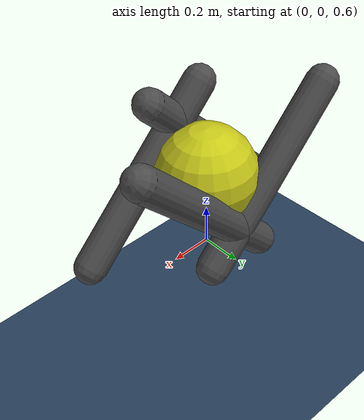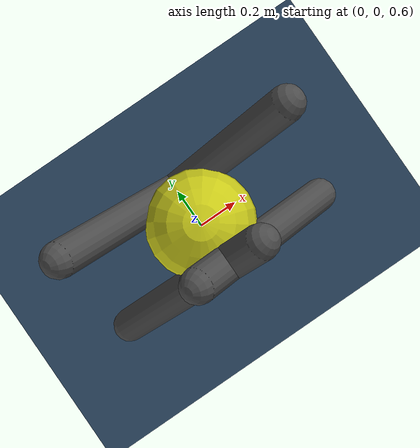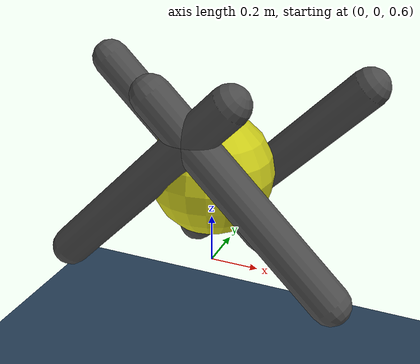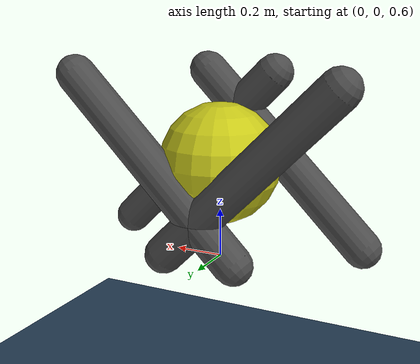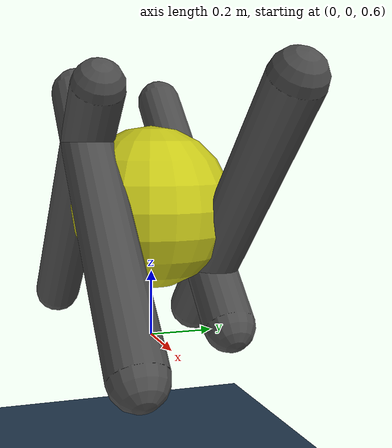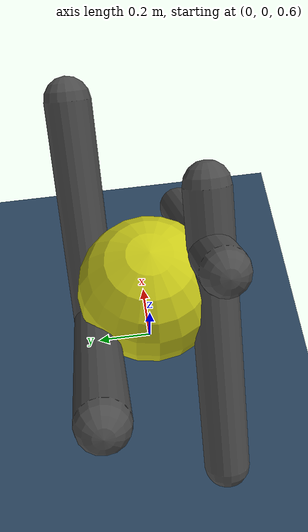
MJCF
<mujoco model="ant_simple">
  <option timestep="0.005" gravity="0 0 -9.81"/>

  <visual>
    <headlight ambient="0.4 0.4 0.4" diffuse="0.6 0.6 0.6" specular="0.1 0.1 0.1"/>
    <rgba haze="0.15 0.25 0.35 1"/>
    <global offwidth="1024" offheight="1024"/>
  </visual>

  <worldbody>
    <light pos="0 0 5" dir="0 0 -1" directional="true"/>
    <geom name="floor" type="plane" size="0 0 0.05" material="grid"/>

    <body name="torso" pos="0 0 1">
      <freejoint/>
      <geom name="torso_geom" type="sphere" size="0.25" rgba="0.8 0.8 0.1 1" mass="10"/>
      <body name="leg1" pos="0.2 0.2 0">
         <geom name="leg1_geom" type="capsule" size="0.08 0.5" rgba="0.3 0.3 0.3 1" mass="2" euler="0 45 0"/>
      </body>
      <body name="leg2" pos="-0.2 0.2 0">
         <geom name="leg2_geom" type="capsule" size="0.08 0.5" rgba="0.3 0.3 0.3 1" mass="2" euler="0 -45 0"/>
      </body>
      <body name="leg3" pos="-0.2 -0.2 0">
         <geom name="leg3_geom" type="capsule" size="0.08 0.5" rgba="0.3 0.3 0.3 1" mass="2" euler="0 -135 0"/>
      </body>
      <body name="leg4" pos="0.2 -0.2 0">
         <geom name="leg4_geom" type="capsule" size="0.08 0.5" rgba="0.3 0.3 0.3 1" mass="2" euler="0 135 0"/>
      </body>
    </body>
  </worldbody>

  <asset>
    <texture type="skybox" builtin="gradient" rgb1="0.1 0.1 0.2" rgb2="0 0 0" width="512" height="512"/>
    <texture name="grid" type="2d" builtin="checker" rgb1=".1 .2 .3" rgb2=".2 .3 .4" width="512" height="512" mark="edge" markrgb=".8 .8 .8"/>
    <material name="grid" texture="grid" texrepeat="1 1" texuniform="true" reflectance=".2"/>
  </asset>
</mujoco>
